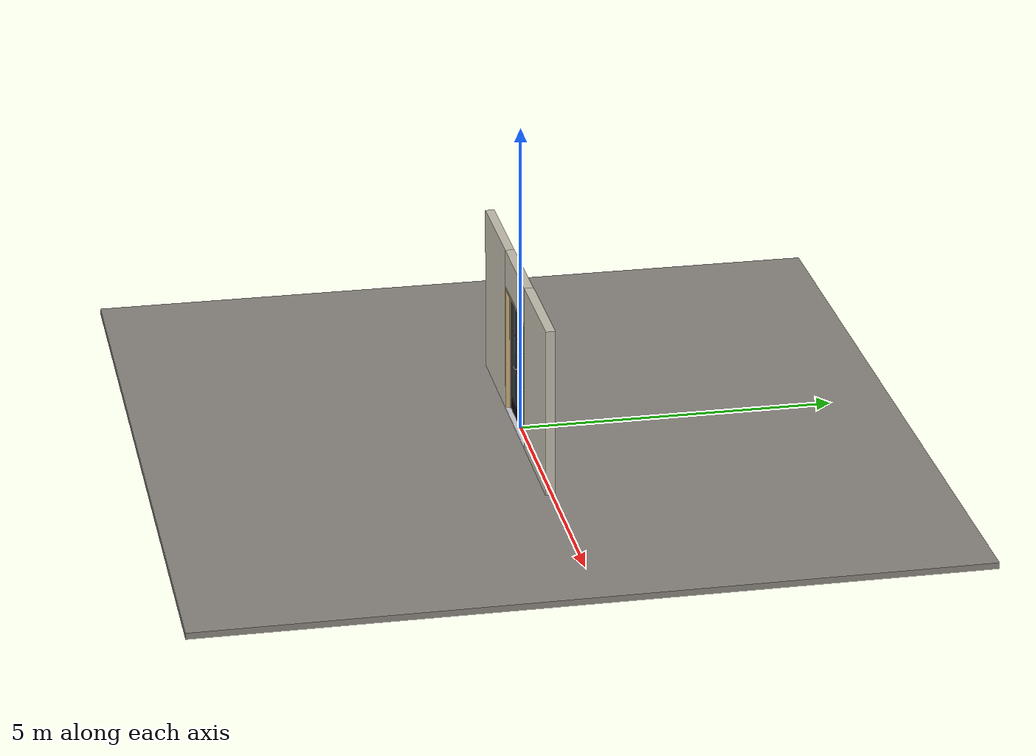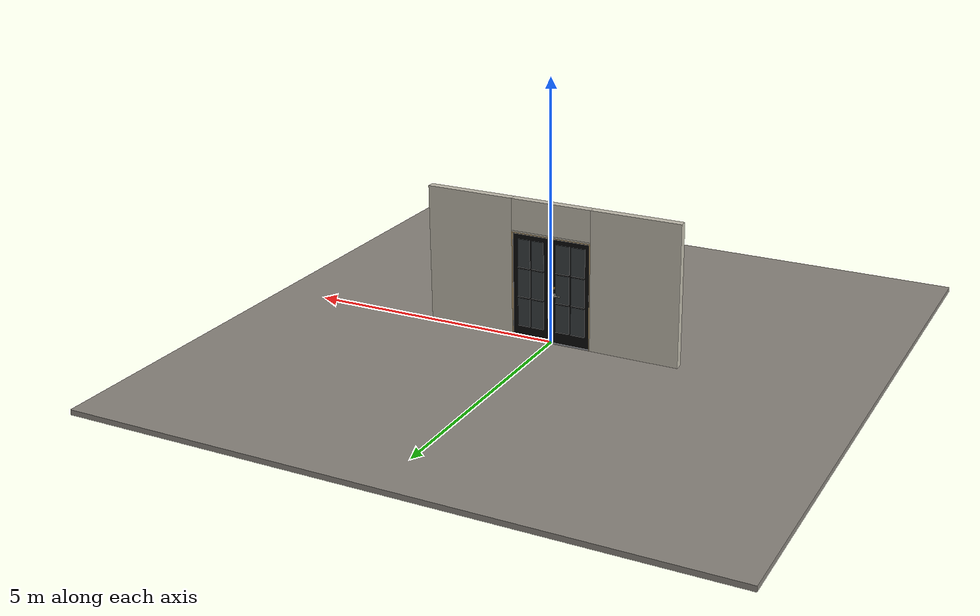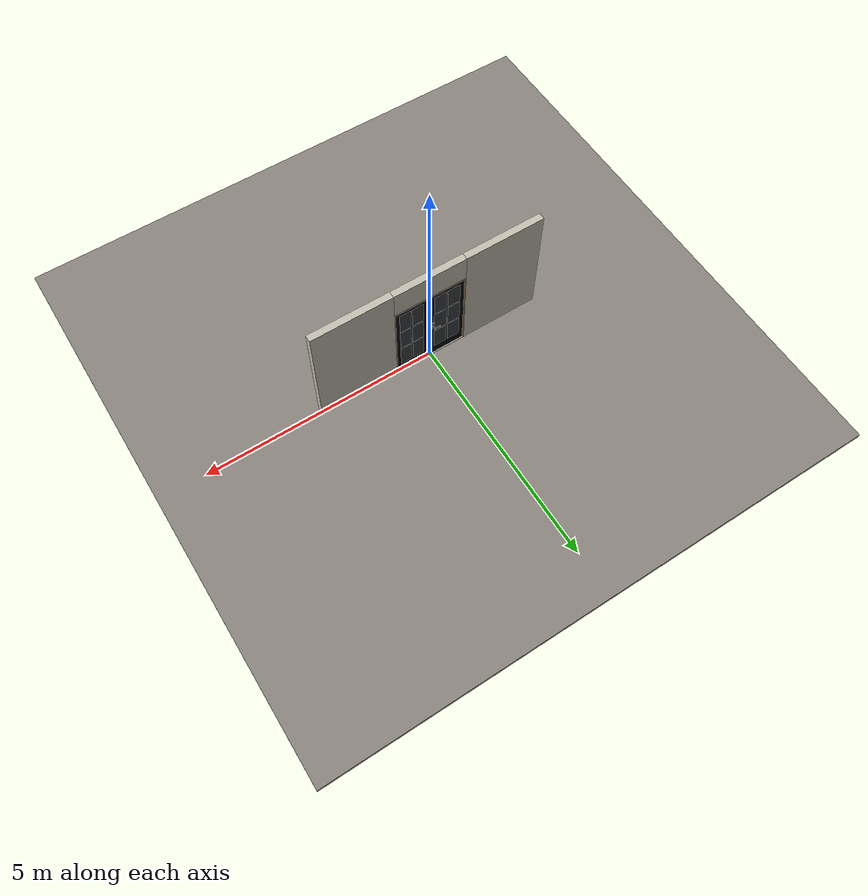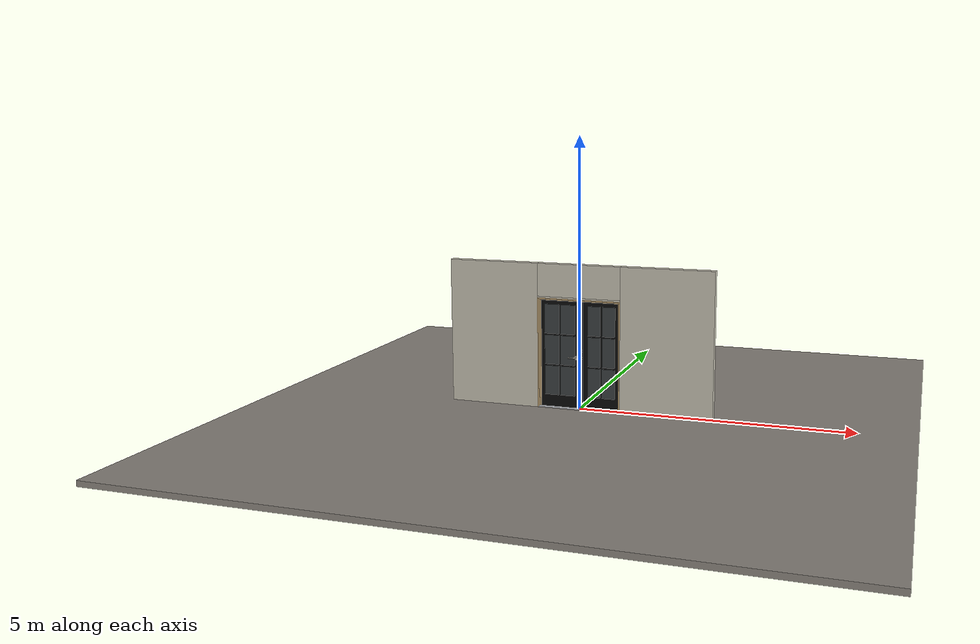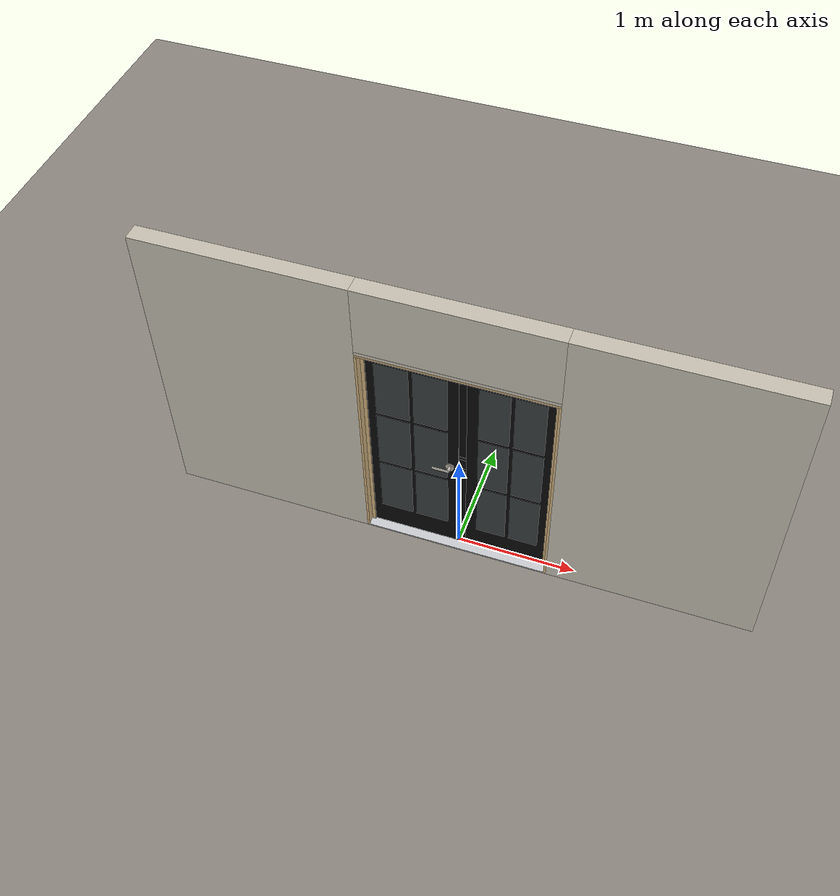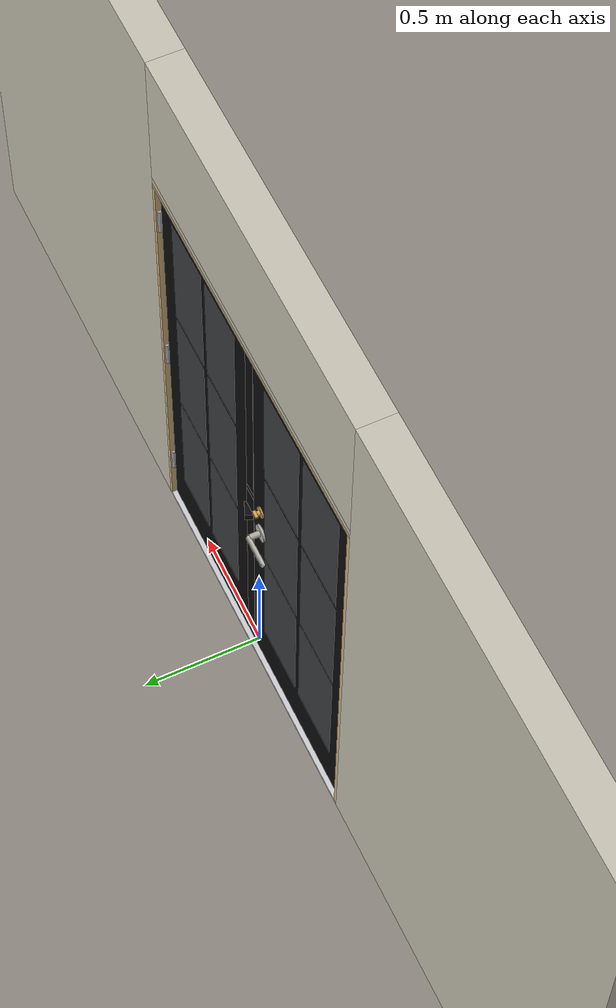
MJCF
<?xml version="1.0" ?>
<mujoco model="db0963_swing_double_full">
  <compiler angle="radian" meshdir="../../hardware" texturedir="../../textures" autolimits="true" inertiafromgeom="false"/>
  <option timestep="0.002" integrator="implicitfast" cone="elliptic" impratio="10" noslip_iterations="3">
    <flag multiccd="enable"/>
  </option>
  <size memory="16M"/>
  <default>
    <geom condim="4" solref="0.005 1" solimp="0.95 0.99 0.001"/>
    <joint solreflimit="0.005 1" solimplimit="0.95 0.99 0.001"/>
    <tendon solreflimit="0.005 1"/>
    <equality solref="0.002 1"/>
  </default>
  <visual>
    <headlight ambient="0.4 0.4 0.4" diffuse="0.7 0.7 0.7" specular="0.2 0.2 0.2"/>
    <quality shadowsize="4096"/>
    <map znear="0.01" zfar="60"/>
  </visual>
  <asset>
    <mesh name="hinge_e22b26c0c1" file="hinge_e22b26c0c1.obj"/>
    <mesh name="hinge_jamb_e1d088f8dc" file="hinge_jamb_e1d088f8dc.obj"/>
    <mesh name="lever_9f02b544cf" file="lever_9f02b544cf.obj"/>
    <mesh name="thumbturn_eb5c9899a3" file="thumbturn_eb5c9899a3.obj"/>
    <material name="mat_floor" rgba="0.55 0.53 0.5 1" specular="0.2" shininess="0.15" reflectance="0"/>
    <material name="mat_wall" rgba="0.78 0.76 0.7 1" specular="0.2" shininess="0.1" reflectance="0"/>
    <material name="mat_leaf_a" rgba="0.04 0.04 0.04 1" specular="0.2" shininess="0.46" reflectance="0"/>
    <material name="mat_glass" rgba="0.85 0.92 0.95 0.25" specular="0.2" shininess="0.95" reflectance="0.1"/>
    <material name="mat_hinge" rgba="0.65 0.66 0.68 1" specular="0.74" shininess="0.5" reflectance="0.36"/>
    <material name="mat_op_nickel_satin" rgba="0.72 0.7 0.66 1" specular="0.8" shininess="0.65" reflectance="0.4"/>
    <material name="mat_trim" rgba="0.85 0.66 0.3 1" specular="0.8" shininess="0.75" reflectance="0.4"/>
    <material name="mat_bolt" rgba="0.85 0.66 0.3 1" specular="0.8" shininess="0.75" reflectance="0.4"/>
    <material name="mat_deadbolt" rgba="0.85 0.66 0.3 1" specular="0.8" shininess="0.75" reflectance="0.4"/>
    <material name="mat_leaf_b" rgba="0.04 0.04 0.04 1" specular="0.2" shininess="0.46" reflectance="0"/>
    <material name="mat_frame" rgba="0.82 0.7 0.5 1" specular="0.2" shininess="0.45" reflectance="0"/>
    <material name="mat_threshold" rgba="0.8 0.81 0.83 1" specular="0.8" shininess="0.6" reflectance="0.4"/>
    <texture name="skybox" type="skybox" builtin="gradient" rgb1="0.6 0.7 0.85" rgb2="0.9 0.92 0.95" width="256" height="256"/>
  </asset>
  <worldbody>
    <light name="sun" pos="1.5 -2.5 4" dir="-0.3 0.5 -0.8" directional="true" diffuse="0.8 0.8 0.8" specular="0.3 0.3 0.3" castshadow="true"/>
    <light name="fill" pos="-1.5 2.5 3" dir="0.3 -0.5 -0.7" directional="true" diffuse="0.35 0.35 0.4" castshadow="false"/>
    <camera name="robot_view" pos="0 -2.572687 1.734312" xyaxes="1 0 0 0 0.26963 0.962964" fovy="52"/>
    <camera name="far_view" pos="0 2.511687 1.734312" xyaxes="-1 0 0 0 -0.26963 0.962964" fovy="52"/>
    <camera name="iso" pos="-1.932062 -2.165938 2.141063" xyaxes="0.741536 -0.670913 0 0.242917 0.268487 0.932151" fovy="46"/>
    <camera name="detail_handle" pos="0.0085 -0.877 1.245" xyaxes="0.97561 0.219512 0 -0.070934 0.315262 0.94635" fovy="38"/>
    <geom name="floor" type="box" size="6 6 0.05" pos="0 0 -0.05" material="mat_floor" group="0" contype="1" conaffinity="1" friction="0.8 0.005 0.0001" density="2400"/>
    <geom name="wall_left" type="box" size="0.85725 0.0725 1.35" pos="-1.64275 -0.0305 1.35" material="mat_wall" group="0" contype="1" conaffinity="1" friction="0.6 0.005 0.0001" density="800"/>
    <geom name="wall_right" type="box" size="0.85725 0.0725 1.35" pos="1.64275 -0.0305 1.35" material="mat_wall" group="0" contype="1" conaffinity="1" friction="0.6 0.005 0.0001" density="800"/>
    <geom name="wall_header" type="box" size="0.7855 0.0725 0.303" pos="0 -0.0305 2.397" material="mat_wall" group="0" contype="1" conaffinity="1" friction="0.6 0.005 0.0001" density="800"/>
    <geom name="hinge_0_jamb" type="mesh" mesh="hinge_jamb_e1d088f8dc" pos="-0.7635 0.029 0.267" quat="0 1 0 0" material="mat_hinge" group="1" contype="0" conaffinity="0" density="7850"/>
    <geom name="hinge_1_jamb" type="mesh" mesh="hinge_jamb_e1d088f8dc" pos="-0.7635 0.029 1.029" quat="0 1 0 0" material="mat_hinge" group="1" contype="0" conaffinity="0" density="7850"/>
    <geom name="hinge_2_jamb" type="mesh" mesh="hinge_jamb_e1d088f8dc" pos="-0.7635 0.029 1.861" quat="0 1 0 0" material="mat_hinge" group="1" contype="0" conaffinity="0" density="7850"/>
    <geom name="hinge_0_jamb_2" type="mesh" mesh="hinge_jamb_e1d088f8dc" pos="0.7635 0.029 0.267" quat="0 0 0 1" material="mat_hinge" group="1" contype="0" conaffinity="0" density="7850"/>
    <geom name="hinge_1_jamb_2" type="mesh" mesh="hinge_jamb_e1d088f8dc" pos="0.7635 0.029 1.029" quat="0 0 0 1" material="mat_hinge" group="1" contype="0" conaffinity="0" density="7850"/>
    <geom name="hinge_2_jamb_2" type="mesh" mesh="hinge_jamb_e1d088f8dc" pos="0.7635 0.029 1.861" quat="0 0 0 1" material="mat_hinge" group="1" contype="0" conaffinity="0" density="7850"/>
    <geom name="jamb_l" type="box" size="0.0095 0.0725 1.0225" pos="-0.776 -0.0305 1.0225" material="mat_frame" group="0" contype="1" conaffinity="1" friction="0.6 0.005 0.0001" density="300"/>
    <geom name="jamb_r" type="box" size="0.0095 0.0725 1.0225" pos="0.776 -0.0305 1.0225" material="mat_frame" group="0" contype="1" conaffinity="1" friction="0.6 0.005 0.0001" density="300"/>
    <geom name="jamb_head" type="box" size="0.7855 0.0725 0.0095" pos="0 -0.0305 2.0545" material="mat_frame" group="0" contype="1" conaffinity="1" friction="0.6 0.005 0.0001" density="300"/>
    <geom name="head_stud" type="box" size="0.7855 0.0725 0.015" pos="0 -0.0305 2.079" material="mat_wall" group="0" contype="1" conaffinity="1" friction="0.6 0.005 0.0001" density="500"/>
    <geom name="stop_l" type="box" size="0.015 0.006 1.0225" pos="-0.7515 -0.0285 1.0225" material="mat_frame" group="0" contype="1" conaffinity="1" friction="0.6 0.005 0.0001" density="300"/>
    <geom name="stop_r" type="box" size="0.015 0.006 1.0225" pos="0.7515 -0.0285 1.0225" material="mat_frame" group="0" contype="1" conaffinity="1" friction="0.6 0.005 0.0001" density="300"/>
    <geom name="stop_head" type="box" size="0.7665 0.006 0.015" pos="0 -0.0285 2.03" material="mat_frame" group="0" contype="1" conaffinity="1" friction="0.6 0.005 0.0001" density="300"/>
    <geom name="threshold" type="box" size="0.7855 0.0725 0.0065" pos="0 -0.0305 0.0065" material="mat_threshold" group="0" contype="1" conaffinity="1" friction="0.5 0.005 0.0001" density="2700"/>
    <site name="approach_point" pos="0 -1.5 0" quat="1 0 0 0" size="0.05" rgba="0.2 0.9 0.2 0.5" group="4"/>
    <site name="goal_point" pos="0 1.5 0" quat="1 0 0 0" size="0.05" rgba="0.2 0.9 0.2 0.5" group="4"/>
    <site name="door_plane_center" pos="0 0 1.0225" quat="1 0 0 0" size="0.02" rgba="0.2 0.9 0.2 0.5" group="4"/>
    <site name="approach_point_2" pos="0 -1.5 0" quat="1 0 0 0" size="0.05" rgba="0.2 0.9 0.2 0.5" group="4"/>
    <site name="goal_point_2" pos="0 1.5 0" quat="1 0 0 0" size="0.05" rgba="0.2 0.9 0.2 0.5" group="4"/>
    <site name="door_plane_center_2" pos="0 0 1.0225" quat="1 0 0 0" size="0.02" rgba="0.2 0.9 0.2 0.5" group="4"/>
    <site name="approach_point_3" pos="0 -1.5 0" quat="1 0 0 0" size="0.05" rgba="0.2 0.9 0.2 0.5" group="4"/>
    <site name="goal_point_3" pos="0 1.5 0" quat="1 0 0 0" size="0.05" rgba="0.2 0.9 0.2 0.5" group="4"/>
    <site name="door_plane_center_3" pos="0 0 1.0225" quat="1 0 0 0" size="0.02" rgba="0.2 0.9 0.2 0.5" group="4"/>
    <body name="leaf_a" pos="-0.7665 0 0">
      <inertial pos="0.350905 0.001616 1.031441" mass="21.810809" quat="0.501908 0.496854 -0.503088 0.498123" diaginertia="1.231963121 7.579473678 8.803204947"/>
      <joint name="leaf_a_hinge" type="hinge" axis="0 0 1" pos="0.003 0.029 0" limited="true" range="0 1.570796" damping="0.173726" frictionloss="0.787163" armature="0.02"/>
      <geom name="leaf_a_slab" type="box" size="0.381 0.022 1.012" pos="0.384 0 1.029" material="mat_leaf_a" group="0" contype="1" conaffinity="1" friction="0.4 0.005 0.0001" density="1"/>
      <geom name="leaf_a_glass_0" type="box" size="0.138 0.0228 0.27336" pos="0.231 0 0.513" material="mat_glass" group="1" contype="0" conaffinity="0" density="1"/>
      <geom name="leaf_a_glass_1" type="box" size="0.138 0.0228 0.27336" pos="0.537 0 0.513" material="mat_glass" group="1" contype="0" conaffinity="0" density="1"/>
      <geom name="leaf_a_glass_2" type="box" size="0.138 0.0228 0.27336" pos="0.231 0 1.08972" material="mat_glass" group="1" contype="0" conaffinity="0" density="1"/>
      <geom name="leaf_a_glass_3" type="box" size="0.138 0.0228 0.27336" pos="0.537 0 1.08972" material="mat_glass" group="1" contype="0" conaffinity="0" density="1"/>
      <geom name="leaf_a_glass_4" type="box" size="0.138 0.0228 0.27336" pos="0.231 0 1.66644" material="mat_glass" group="1" contype="0" conaffinity="0" density="1"/>
      <geom name="leaf_a_glass_5" type="box" size="0.138 0.0228 0.27336" pos="0.537 0 1.66644" material="mat_glass" group="1" contype="0" conaffinity="0" density="1"/>
      <geom name="hinge_0" type="mesh" mesh="hinge_e22b26c0c1" pos="0.003 0.029 0.267" quat="0 1 0 0" material="mat_hinge" group="1" contype="0" conaffinity="0" density="7850"/>
      <geom name="hinge_1" type="mesh" mesh="hinge_e22b26c0c1" pos="0.003 0.029 1.029" quat="0 1 0 0" material="mat_hinge" group="1" contype="0" conaffinity="0" density="7850"/>
      <geom name="hinge_2" type="mesh" mesh="hinge_e22b26c0c1" pos="0.003 0.029 1.861" quat="0 1 0 0" material="mat_hinge" group="1" contype="0" conaffinity="0" density="7850"/>
      <geom name="leaf_a_latch_bolt_faceplate" type="box" size="0.0006 0.01235 0.0267" pos="0.7644 0 0.965" material="mat_bolt" group="1" contype="0" conaffinity="0" density="8500"/>
      <geom name="leaf_a_deadbolt_faceplate" type="box" size="0.0006 0.014 0.0245" pos="0.7644 0 1.105" material="mat_deadbolt" group="1" contype="0" conaffinity="0" density="8500"/>
      <site name="leaf_a_edge_mid" pos="0.765 0 1.012" quat="1 0 0 0" size="0.02" rgba="0.2 0.9 0.2 0.5" group="4"/>
      <body name="leaf_a_handle" pos="0.695 0 0.965">
        <inertial pos="-0.028544 0 0" mass="0.978187" quat="0 0.707107 0.707107 0" diaginertia="0.001772047 0.003604455 0.005198299"/>
        <joint name="leaf_a_handle_hinge" type="hinge" axis="0 -1 0" limited="true" range="0 0.96" damping="0.245624" frictionloss="0.048" stiffness="1.2" springref="-0.458333" armature="0.01"/>
        <geom name="leaf_a_handle_spindle" type="cylinder" size="0.006 0.03" pos="0 0 0" quat="0.707107 -0.707107 0 0" material="mat_op_nickel_satin" group="1" contype="0" conaffinity="0" density="7850"/>
        <geom name="leaf_a_handle_lever_n" type="mesh" mesh="lever_9f02b544cf" pos="0 -0.022 0" quat="0.707107 0.707107 0 0" material="mat_op_nickel_satin" group="1" contype="0" conaffinity="0" density="3000"/>
        <geom name="leaf_a_handle_lever_col_n" type="capsule" size="0.0095 0.053" pos="-0.0625 -0.077 0" quat="0.707107 0 -0.707107 0" material="mat_op_nickel_satin" group="3" contype="1" conaffinity="1" rgba="0.8 0.3 0.3 0.25" friction="0.7 0.01 0.0001" density="3000"/>
        <geom name="leaf_a_handle_hub_col_n" type="cylinder" size="0.012 0.022" pos="0 -0.052 0" quat="0.707107 -0.707107 0 0" material="mat_op_nickel_satin" group="3" contype="1" conaffinity="1" rgba="0.8 0.3 0.3 0.25" friction="0.6 0.005 0.0001" density="3000"/>
        <geom name="leaf_a_handle_lever_p" type="mesh" mesh="lever_9f02b544cf" pos="0 0.022 0" quat="-0.707107 0.707107 0 0" material="mat_op_nickel_satin" group="1" contype="0" conaffinity="0" density="3000"/>
        <geom name="leaf_a_handle_lever_col_p" type="capsule" size="0.0095 0.053" pos="-0.0625 0.077 0" quat="0.707107 0 -0.707107 0" material="mat_op_nickel_satin" group="3" contype="1" conaffinity="1" rgba="0.8 0.3 0.3 0.25" friction="0.7 0.01 0.0001" density="3000"/>
        <geom name="leaf_a_handle_hub_col_p" type="cylinder" size="0.012 0.022" pos="0 0.052 0" quat="0.707107 -0.707107 0 0" material="mat_op_nickel_satin" group="3" contype="1" conaffinity="1" rgba="0.8 0.3 0.3 0.25" friction="0.6 0.005 0.0001" density="3000"/>
        <site name="leaf_a_handle_grip_n" pos="-0.1 -0.077 0" quat="1 0 0 0" size="0.012" rgba="0.2 0.9 0.2 0.5" group="4"/>
        <site name="leaf_a_handle_grip_p" pos="-0.1 0.077 0" quat="1 0 0 0" size="0.012" rgba="0.2 0.9 0.2 0.5" group="4"/>
      </body>
      <body name="leaf_a_latch_bolt" pos="0.765 0 0.965">
        <inertial pos="-0.00865 0 0" mass="0.041419" quat="0.92388 -0.382683 0 0" diaginertia="0.000000798 0.000005598 0.000005598"/>
        <joint name="leaf_a_latch_bolt_slide" type="slide" axis="-1 0 0" limited="true" range="0 0.0127" damping="2" frictionloss="0.3" stiffness="300" springref="-0.008333" armature="0.1"/>
        <geom name="leaf_a_latch_bolt_capsule" type="capsule" size="0.00635 0.015" pos="-0.00865 0 0" quat="0.707107 0 0.707107 0" material="mat_bolt" group="0" contype="1" conaffinity="1" friction="0.2 0.005 0.0001" density="8500"/>
      </body>
      <body name="leaf_a_deadbolt" pos="0.765 0 1.105">
        <inertial pos="-0.0277 0 0" mass="0.18836" quat="0 0 0.707107 0.707107" diaginertia="0.000013829 0.000052194 0.000057986"/>
        <joint name="leaf_a_deadbolt_slide" type="slide" axis="-1 0 0" limited="true" range="0 0.0254" damping="5" frictionloss="1.5" armature="0.1" ref="0.0254"/>
        <geom name="leaf_a_deadbolt_box" type="box" size="0.0277 0.008 0.0125" pos="-0.0277 0 0" material="mat_deadbolt" group="0" contype="1" conaffinity="1" friction="0.3 0.005 0.0001" density="8500"/>
      </body>
      <body name="leaf_a_deadbolt_thumbturn" pos="0.7 0.022 1.105">
        <inertial pos="0 0.012928 0" mass="0.178946" quat="0.707107 -0.000001 -0.000001 0.707107" diaginertia="0.000026045 0.000026215 0.000032438"/>
        <joint name="leaf_a_deadbolt_thumbturn_hinge" type="hinge" axis="0 -1 0" limited="true" range="0 1.5708" damping="0.05" frictionloss="0.3" armature="0.005" ref="1.5708"/>
        <geom name="leaf_a_deadbolt_thumbturn_mesh" type="mesh" mesh="thumbturn_eb5c9899a3" pos="0 0 0" quat="-0.499999 0.499999 0.500001 0.500001" material="mat_deadbolt" group="0" contype="1" conaffinity="1" friction="0.6 0.005 0.0001" density="7100"/>
        <geom name="leaf_a_deadbolt_thumbturn_col" type="box" size="0.006 0.012 0.016" pos="0 0.02 0" quat="0.707105 0 -0.707108 0" material="mat_deadbolt" group="3" contype="1" conaffinity="1" rgba="0.8 0.3 0.3 0.25" friction="0.6 0.005 0.0001" density="7100"/>
      </body>
    </body>
    <body name="leaf_b" pos="0.7665 0 0">
      <inertial pos="-0.322458 0.001621 1.031389" mass="20.922933" quat="0.497834 0.503258 -0.496682 0.502194" diaginertia="0.998551545 7.296550226 8.287187323"/>
      <joint name="leaf_b_hinge" type="hinge" axis="0 0 -1" pos="-0.003 0.029 0" limited="true" range="0 0.001" damping="0.173726" frictionloss="0.787163" armature="0.02"/>
      <geom name="leaf_b_edge_965_wall_n" type="box" size="0.03 0.007075 0.0167" pos="-0.735 -0.014925 0.965" material="mat_leaf_b" group="0" contype="1" conaffinity="1" friction="0.6 0.005 0.0001" density="1"/>
      <geom name="leaf_b_edge_965_wall_p" type="box" size="0.03 0.008 0.0167" pos="-0.735 0.01585 0.965" material="mat_leaf_b" group="0" contype="1" conaffinity="1" friction="0.6 0.005 0.0001" density="1"/>
      <geom name="leaf_b_edge_965_ramp" type="box" size="0.03 0.01649 0.0167" pos="-0.730861 0.026388 0.965" quat="0.977148 0 0 -0.212558" material="mat_leaf_b" group="0" contype="1" conaffinity="1" friction="0.12 0.005 0.0001" density="1"/>
      <geom name="leaf_b_edge_965_back" type="box" size="0.02165 0.00785 0.0167" pos="-0.72665 0 0.965" material="mat_leaf_b" group="0" contype="1" conaffinity="1" friction="0.6 0.005 0.0001" density="1"/>
      <geom name="leaf_b_edge_1105_wall_n" type="box" size="0.03 0.00625 0.0155" pos="-0.735 -0.01575 1.105" material="mat_leaf_b" group="0" contype="1" conaffinity="1" friction="0.6 0.005 0.0001" density="1"/>
      <geom name="leaf_b_edge_1105_wall_p" type="box" size="0.03 0.00625 0.0155" pos="-0.735 0.01575 1.105" material="mat_leaf_b" group="0" contype="1" conaffinity="1" friction="0.6 0.005 0.0001" density="1"/>
      <geom name="leaf_b_edge_1105_back" type="box" size="0.0153 0.0095 0.0155" pos="-0.7203 0 1.105" material="mat_leaf_b" group="0" contype="1" conaffinity="1" friction="0.6 0.005 0.0001" density="1"/>
      <geom name="leaf_b_edge_seg_0" type="box" size="0.03 0.022 0.46565" pos="-0.735 0 0.48265" material="mat_leaf_b" group="0" contype="1" conaffinity="1" friction="0.6 0.005 0.0001" density="1"/>
      <geom name="leaf_b_edge_seg_1" type="box" size="0.03 0.022 0.0539" pos="-0.735 0 1.0356" material="mat_leaf_b" group="0" contype="1" conaffinity="1" friction="0.6 0.005 0.0001" density="1"/>
      <geom name="leaf_b_edge_seg_2" type="box" size="0.03 0.022 0.46025" pos="-0.735 0 1.58075" material="mat_leaf_b" group="0" contype="1" conaffinity="1" friction="0.6 0.005 0.0001" density="1"/>
      <geom name="leaf_b_slab" type="box" size="0.351 0.022 1.012" pos="-0.354 0 1.029" material="mat_leaf_b" group="0" contype="1" conaffinity="1" friction="0.4 0.005 0.0001" density="1"/>
      <geom name="leaf_b_glass_0" type="box" size="0.123 0.0228 0.27336" pos="-0.216 0 0.513" material="mat_glass" group="1" contype="0" conaffinity="0" density="1"/>
      <geom name="leaf_b_glass_1" type="box" size="0.123 0.0228 0.27336" pos="-0.492 0 0.513" material="mat_glass" group="1" contype="0" conaffinity="0" density="1"/>
      <geom name="leaf_b_glass_2" type="box" size="0.123 0.0228 0.27336" pos="-0.216 0 1.08972" material="mat_glass" group="1" contype="0" conaffinity="0" density="1"/>
      <geom name="leaf_b_glass_3" type="box" size="0.123 0.0228 0.27336" pos="-0.492 0 1.08972" material="mat_glass" group="1" contype="0" conaffinity="0" density="1"/>
      <geom name="leaf_b_glass_4" type="box" size="0.123 0.0228 0.27336" pos="-0.216 0 1.66644" material="mat_glass" group="1" contype="0" conaffinity="0" density="1"/>
      <geom name="leaf_b_glass_5" type="box" size="0.123 0.0228 0.27336" pos="-0.492 0 1.66644" material="mat_glass" group="1" contype="0" conaffinity="0" density="1"/>
      <geom name="hinge_0_2" type="mesh" mesh="hinge_e22b26c0c1" pos="-0.003 0.029 0.267" quat="0 0 0 1" material="mat_hinge" group="1" contype="0" conaffinity="0" density="7850"/>
      <geom name="hinge_1_2" type="mesh" mesh="hinge_e22b26c0c1" pos="-0.003 0.029 1.029" quat="0 0 0 1" material="mat_hinge" group="1" contype="0" conaffinity="0" density="7850"/>
      <geom name="hinge_2_2" type="mesh" mesh="hinge_e22b26c0c1" pos="-0.003 0.029 1.861" quat="0 0 0 1" material="mat_hinge" group="1" contype="0" conaffinity="0" density="7850"/>
      <site name="leaf_b_edge_mid" pos="-0.765 0 1.012" quat="1 0 0 0" size="0.02" rgba="0.2 0.9 0.2 0.5" group="4"/>
    </body>
  </worldbody>
  <tendon>
    <fixed name="leaf_a_latch_bolt_coupling" limited="true" range="0 10">
      <joint joint="leaf_a_latch_bolt_slide" coef="1"/>
      <joint joint="leaf_a_handle_hinge" coef="-0.013956"/>
    </fixed>
  </tendon>
  <equality>
    <joint name="leaf_a_deadbolt_couple" joint1="leaf_a_deadbolt_slide" joint2="leaf_a_deadbolt_thumbturn_hinge" polycoef="0 0.01617 0 0 0" active="true"/>
  </equality>
  <contact>
    <exclude body1="leaf_a_deadbolt" body2="leaf_a_deadbolt_thumbturn"/>
  </contact>
  <sensor>
    <jointpos name="leaf_a_hinge_pos" joint="leaf_a_hinge"/>
    <jointvel name="leaf_a_hinge_vel" joint="leaf_a_hinge"/>
    <jointpos name="leaf_a_handle_hinge_pos" joint="leaf_a_handle_hinge"/>
    <jointvel name="leaf_a_handle_hinge_vel" joint="leaf_a_handle_hinge"/>
    <jointpos name="leaf_a_latch_bolt_slide_pos" joint="leaf_a_latch_bolt_slide"/>
    <jointvel name="leaf_a_latch_bolt_slide_vel" joint="leaf_a_latch_bolt_slide"/>
    <jointpos name="leaf_a_deadbolt_slide_pos" joint="leaf_a_deadbolt_slide"/>
    <jointvel name="leaf_a_deadbolt_slide_vel" joint="leaf_a_deadbolt_slide"/>
    <jointpos name="leaf_a_deadbolt_thumbturn_hinge_pos" joint="leaf_a_deadbolt_thumbturn_hinge"/>
    <jointvel name="leaf_a_deadbolt_thumbturn_hinge_vel" joint="leaf_a_deadbolt_thumbturn_hinge"/>
    <jointpos name="leaf_b_hinge_pos" joint="leaf_b_hinge"/>
    <jointvel name="leaf_b_hinge_vel" joint="leaf_b_hinge"/>
  </sensor>
</mujoco>
